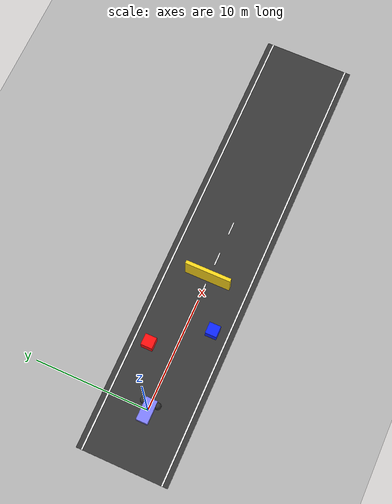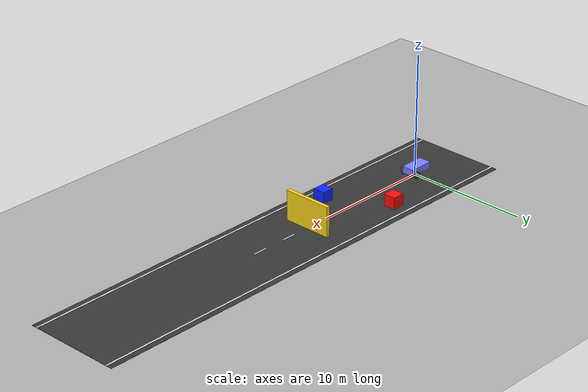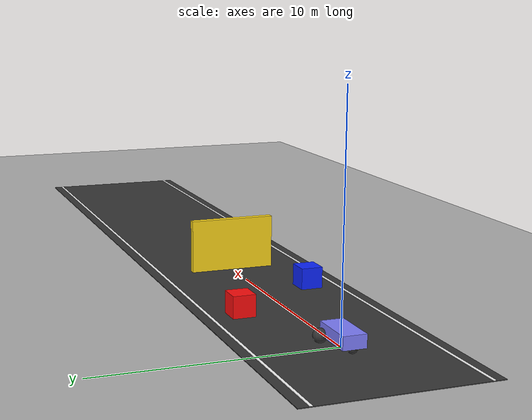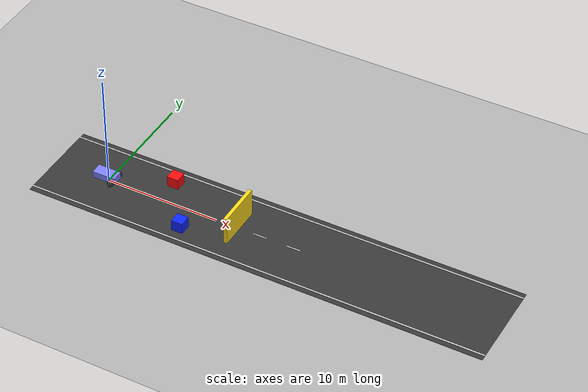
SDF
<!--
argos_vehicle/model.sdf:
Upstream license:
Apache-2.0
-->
<?xml version="1.0"?>
<sdf version="1.8">
  <world name="argos_world">

    <physics name="default_physics" type="ignored">
      <max_step_size>0.001</max_step_size>
      <real_time_factor>1.0</real_time_factor>
    </physics>

    <plugin
      filename="gz-sim-physics-system"
      name="gz::sim::systems::Physics">
    </plugin>

    <plugin
      filename="gz-sim-user-commands-system"
      name="gz::sim::systems::UserCommands">
    </plugin>

    <plugin
      filename="gz-sim-scene-broadcaster-system"
      name="gz::sim::systems::SceneBroadcaster">
    </plugin>

    <plugin
      filename="gz-sim-sensors-system"
      name="gz::sim::systems::Sensors">
      <render_engine>ogre2</render_engine>
      </plugin>

    <light type="directional" name="sun">
      <cast_shadows>true</cast_shadows>
      <pose>0 0 10 0 0 0</pose>
      <diffuse>0.8 0.8 0.8 1</diffuse>
      <specular>0.2 0.2 0.2 1</specular>

      <direction>-0.5 0.1 -0.9</direction>
    </light>

    <model name="ground_plane">
      <static>true</static>

      <link name="link">
        <collision name="collision">
          <geometry>
            <plane>
              <normal>0 0 1</normal>
              <size>100 100</size>
            </plane>
          </geometry>
        </collision>

        <visual name="visual">
          <geometry>
            <plane>
              <normal>0 0 1</normal>
              <size>100 100</size>
            </plane>
          </geometry>

          <material>
            <ambient>0.7 0.7 0.7 1</ambient>
            <diffuse>0.7 0.7 0.7 1</diffuse>
          </material>
        </visual>
      </link>
    </model>

    <!-- ARGOS perception test road -->
    <model name="test_road">
      <static>true</static>

      <pose>15 0 0.015 0 0 0</pose>

      <link name="road_link">
        <visual name="road_visual">
          <geometry>
            <box>
              <size>40 8 0.03</size>
            </box>
          </geometry>

          <material>
            <ambient>0.18 0.18 0.18 1</ambient>
            <diffuse>0.22 0.22 0.22 1</diffuse>
            <specular>0.05 0.05 0.05 1</specular>
          </material>
        </visual>
      </link>
    </model>

    <!-- Left road boundary -->
    <model name="left_boundary_line">
      <static>true</static>

      <pose>15 3.5 0.04 0 0 0</pose>

      <link name="link">
        <visual name="visual">
          <geometry>
            <box>
              <size>40 0.12 0.02</size>
            </box>
          </geometry>

          <material>
            <ambient>1 1 1 1</ambient>
            <diffuse>1 1 1 1</diffuse>
          </material>
        </visual>
      </link>
    </model>

    <!-- Right road boundary -->
    <model name="right_boundary_line">
      <static>true</static>

      <pose>15 -3.5 0.04 0 0 0</pose>

      <link name="link">
        <visual name="visual">
          <geometry>
            <box>
              <size>40 0.12 0.02</size>
            </box>
          </geometry>

          <material>
            <ambient>1 1 1 1</ambient>
            <diffuse>1 1 1 1</diffuse>
          </material>
        </visual>
      </link>
    </model>

    <!-- Center dashed lane markings -->

    <model name="center_dash_01">
      <static>true</static>
      <pose>2 0 0.04 0 0 0 </pose>
      <link name="link">
        <visual name="visual">
          <geometry>
            <box>
              <size>1.2 0.10 0.02</size>
            </box>
          </geometry>

          <material>
            <ambient>1 1 1 1</ambient>
            <diffuse>1 1 1 1</diffuse>
          </material>
        </visual>
      </link>
    </model>

    <model name="center_dash_02">
      <static>true</static>
      <pose>5 0 0.04 0 0 0</pose>
      <link name="link">
        <visual name="visual">
          <geometry>
            <box>
              <size>1.2 0.01 0.02</size>
            </box>
          </geometry>
          <material>
            <ambient>1 1 1 1</ambient>
            <diffuse>1 1 1 1</diffuse>
          </material>
        </visual>
      </link>
    </model>

    <model name="center_dash_03">
      <static>true</static>
      <pose>8 0 0.04 0 0 0</pose>
      <link name="link">
        <visual name="visual">
          <geometry>
            <box>
              <size>1.2 0.10 0.02</size>
            </box>
          </geometry>
          <material>
            <ambient>1 1 1 1</ambient>
            <diffuse>1 1 1 1</diffuse>
          </material>
        </visual>
      </link>
    </model>

    <model name="center_dash_04">
      <static>true</static>
      <pose>11 0 0.04 0 0 0</pose>
      <link name="link">
        <visual name="visual">
          <geometry>
            <box>
              <size>1.2 0.10 0.02</size>
            </box>
          </geometry>
          <material>
            <ambient>1 1 1 1</ambient>
            <diffuse>1 1 1 1</diffuse>
          </material>
        </visual>
      </link>
    </model>

    <model name="center_dash_05">
      <static>true</static>
      <pose>14 0 0.04 0 0 0</pose>
      <link name="link">
        <visual name="visual">
          <geometry>
            <box>
              <size>1.2 0.10 0.02</size>
            </box>
          </geometry>

          <material>
            <ambient>1 1 1 1</ambient>
            <diffuse>1 1 1 1</diffuse>
          </material>
        </visual>
      </link>
    </model>

    <model name="center_dash_06">
        <static>true</static>
        <pose>17 0 0.04 0 0 0</pose>
        <link name="link">
          <visual name="visual">
            <geometry>
              <box>
                <size>1.2 0.10 0.02</size>
              </box>
            </geometry>

            <material>
              <ambient>1 1 1 1</ambient>
              <diffuse>1 1 1 1</diffuse>
            </material>
          </visual>
        </link>
      </model>

      <!-- Red perception target -->
      <model name="red_obstacle">
        <static>true</static>

        <pose>5.0 2.2 0.5 0 0 0</pose>

        <link name="link">
          <collision name="collision">
            <geometry>
              <box>
                <size>1 1 1</size>
              </box>
            </geometry>
          </collision>

          <visual name="visual">
            <geometry>
              <box>
                <size>1 1 1</size>
              </box>
            </geometry>

            <material>
              <ambient>0.8 0.05 0.05 1</ambient>
              <diffuse>1 0.05 0.05 1</diffuse>
            </material>
          </visual>
        </link>
      </model>

      <!-- Blue perception target -->
      <model name="blue_obstacle">
        <static>true</static>

        <pose>8.0 -2.2 0.5 0 0 0</pose>

        <link name="link">
          <collision name="collision">
            <geometry>
              <box>
                <size>1 1 1</size>
              </box>
            </geometry>
          </collision>

          <visual name="visual">
            <geometry>
              <box>
                <size>1 1 1</size>
              </box>
            </geometry>

            <material>
              <ambient>0.05 0.1 0.8 1</ambient>
              <diffuse>0.05 0.15 1 1</diffuse>
            </material>
          </visual>
        </link>
      </model>

      <!-- Far visual landmark -->
      <model name="marker_wall">
        <static>true</static>

        <pose>12 0 1.25 0 0 0</pose>

        <link name="link">
          <collision name="collision">
            <geometry>
              <box>
                <size>0.3 4 2.5</size>
              </box>
            </geometry>
          </collision>

          <visual name="visual">
            <geometry>
              <box>
                <size>0.3 4 2.5</size>
              </box>
            </geometry>

            <material>
              <ambient>0.9 0.75 0.1 1</ambient>
              <diffuse>1 0.85 0.1 1</diffuse>
            </material>
          </visual>
        </link>
      </model>

    <include>
      <uri>model://argos_vehicle</uri>
      <name>vehicle_blue</name>
      <pose>0 0 0.4 0 0 0</pose>
    </include>

  </world>
</sdf>

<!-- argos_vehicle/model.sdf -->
<sdf version="1.8">
    <model name='vehicle'>
      <link name='chassis'>
        <pose>-0.151427 -0 0.175 0 -0 0</pose>
        <inertial>
          <mass>1.14395</mass>
          <inertia>
            <ixx>0.126164</ixx>
            <ixy>0</ixy>
            <ixz>0</ixz>
            <iyy>0.416519</iyy>
            <iyz>0</iyz>
            <izz>0.481014</izz>
          </inertia>
        </inertial>
        <visual name='visual_chassis'>
          <geometry>
            <box>
              <size>2.01142 1 0.568726</size>
            </box>
          </geometry>
          <material>
            <ambient>0.5 0.5 1.0 1</ambient>
            <diffuse>0.5 0.5 1.0 1</diffuse>
            <specular>0.0 0.0 1.0 1</specular>
          </material>
        </visual>
        <collision name='collision_chassis'>
          <geometry>
            <box>
              <size>2.01142 1 0.568726</size>
            </box>
          </geometry>
        </collision>

        <sensor name="front_camera" type="camera">
          <pose>0.8 0 0.45 0 0 0</pose>
          <topic>/argos/front_camera/image</topic>
          <update_rate>30</update_rate>
          <always_on>true</always_on>

          <camera>
            <horizontal_fov>1.047</horizontal_fov>

            <image>
              <width>640</width>
              <height>480</height>
              <format>R8G8B8</format>
            </image>

            <clip>
              <near>0.1</near>
              <far>100</far>
            </clip>
          </camera>
        </sensor>
      </link>

      <link name='left_wheel'>
        <pose>0.554283 0.625029 -0.025 -1.5707 0 0</pose>
        <inertial>
          <mass>2</mass>
          <inertia>
            <ixx>0.145833</ixx>
            <ixy>0</ixy>
            <ixz>0</ixz>
            <iyy>0.145833</iyy>
            <iyz>0</iyz>
            <izz>0.125</izz>
          </inertia>
        </inertial>
        <visual name='visual_left_wheel'>
          <geometry>
            <sphere>
              <radius>0.3</radius>
            </sphere>
          </geometry>
          <material>
            <ambient>0.2 0.2 0.2 1</ambient>
            <diffuse>0.2 0.2 0.2 1</diffuse>
            <specular>0.2 0.2 0.2 1</specular>
          </material>
        </visual>
        <collision name='collision_left_wheel'>
          <geometry>
            <sphere>
              <radius>0.3</radius>
            </sphere>
          </geometry>
        </collision>
      </link>

      <link name='right_wheel'>
        <pose>0.554282 -0.625029 -0.025 -1.5707 0 0</pose>
        <inertial>
          <mass>2</mass>
          <inertia>
            <ixx>0.145833</ixx>
            <ixy>0</ixy>
            <ixz>0</ixz>
            <iyy>0.145833</iyy>
            <iyz>0</iyz>
            <izz>0.125</izz>
          </inertia>
        </inertial>
        <visual name='visual_right_wheel'>
          <geometry>
            <sphere>
              <radius>0.3</radius>
            </sphere>
          </geometry>
          <material>
            <ambient>0.2 0.2 0.2 1</ambient>
            <diffuse>0.2 0.2 0.2 1</diffuse>
            <specular>0.2 0.2 0.2 1</specular>
          </material>
        </visual>
        <collision name='collision_right_wheel'>
          <geometry>
            <sphere>
              <radius>0.3</radius>
            </sphere>
          </geometry>
        </collision>
      </link>

      <link name='caster'>
        <pose>-0.957138 -0 -0.125 0 -0 0</pose>
        <inertial>
          <mass>1</mass>
          <inertia>
            <ixx>0.1</ixx>
            <ixy>0</ixy>
            <ixz>0</ixz>
            <iyy>0.1</iyy>
            <iyz>0</iyz>
            <izz>0.1</izz>
          </inertia>
        </inertial>
        <visual name='visual_caster'>
          <geometry>
            <sphere>
              <radius>0.2</radius>
            </sphere>
          </geometry>
          <material>
            <ambient>0.2 0.2 0.2 1</ambient>
            <diffuse>0.2 0.2 0.2 1</diffuse>
            <specular>0.2 0.2 0.2 1</specular>
          </material>
        </visual>
        <collision name='collision_caster'>
          <geometry>
            <sphere>
              <radius>0.2</radius>
            </sphere>
          </geometry>
        </collision>
      </link>

      <joint name='left_wheel_joint' type='revolute'>
        <parent>chassis</parent>
        <child>left_wheel</child>
        <axis>
          <xyz>0 0 1</xyz>
          <limit>
            <lower>-1.79769e+308</lower>
            <upper>1.79769e+308</upper>
          </limit>
        </axis>
      </joint>

      <joint name='right_wheel_joint' type='revolute'>
        <parent>chassis</parent>
        <child>right_wheel</child>
        <axis>
          <xyz>0 0 1</xyz>
          <limit>
            <lower>-1.79769e+308</lower>
            <upper>1.79769e+308</upper>
          </limit>
        </axis>
      </joint>

      <joint name='caster_wheel' type='ball'>
        <parent>chassis</parent>
        <child>caster</child>
      </joint>

      <plugin
        filename="ignition-gazebo-diff-drive-system"
        name="ignition::gazebo::systems::DiffDrive">
        <left_joint>left_wheel_joint</left_joint>
        <right_joint>right_wheel_joint</right_joint>
        <wheel_separation>1.25</wheel_separation>
        <wheel_radius>0.3</wheel_radius>
        <odom_publish_frequency>1</odom_publish_frequency>
        <max_linear_acceleration>1</max_linear_acceleration>
        <min_linear_acceleration>-1</min_linear_acceleration>
        <max_angular_acceleration>2</max_angular_acceleration>
        <min_angular_acceleration>-2</min_angular_acceleration>
        <max_linear_velocity>1.0</max_linear_velocity>
        <min_linear_velocity>-1.0</min_linear_velocity>
        <max_angular_velocity>1</max_angular_velocity>
        <min_angular_velocity>-1</min_angular_velocity>
      </plugin>

    </model>
</sdf>
